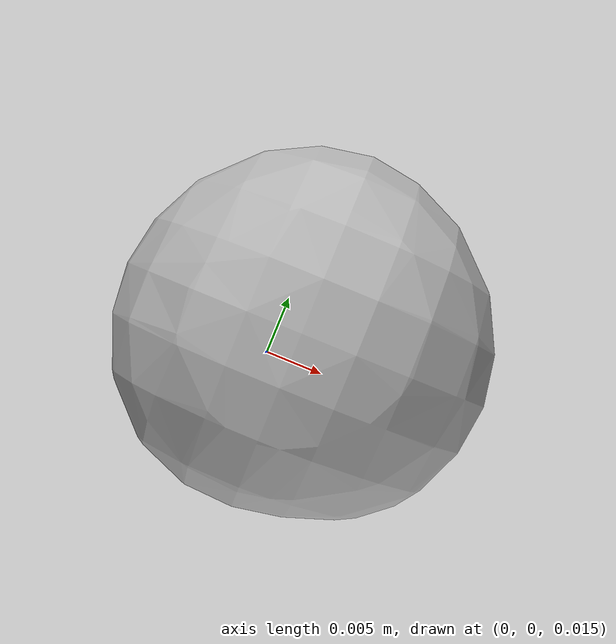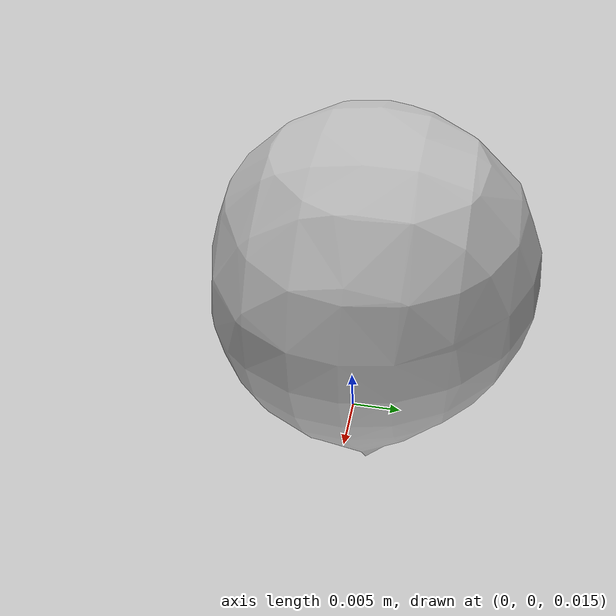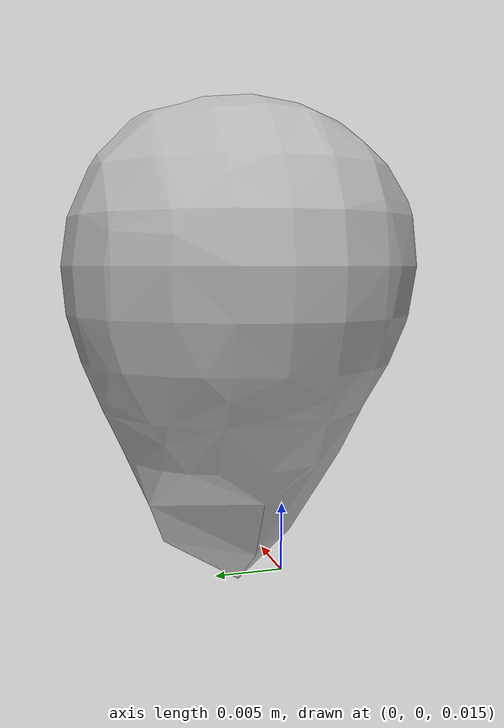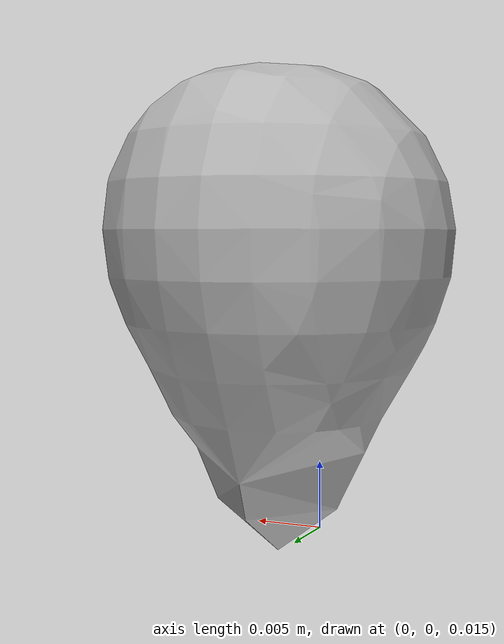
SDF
<?xml version='1.0'?>
<sdf version="1.4">
  <model name="072-f_toy_airplane">
    <static>false</static>
    <link name="link">
      <inertial>
        <pose>0.0023859734482038035 0.002729162435836264 0.03459613425242355 -3.1274735948325545 -0.027452215022373584 1.441382929250858</pose>
        <mass>0.0009732522539859455</mass>
        <inertia>
          <ixx>7.989948842398418e-08</ixx>
          <ixy>-1.2305290453823898e-24</ixy>
          <ixz>1.0805105175539502e-23</ixz>
          <iyy>7.89480909100528e-08</iyy>
          <iyz>8.721786864835362e-25</iyz>
          <izz>5.766214688224952e-08</izz>
        </inertia>
      </inertial>
      <collision name="collision">
        <geometry>
          <mesh>
            <!-- Use a downsampled mesh for collisions -->
            <uri>model:///072-f_toy_airplane/072-f_toy_airplane_250_collision.stl</uri>
	        </mesh>
        </geometry>
        <surface>
      </surface>
      </collision>
      <visual name="visual">
        <geometry>
          <mesh>
            <uri>model:///072-f_toy_airplane/textured.obj</uri>
	        </mesh>
        </geometry>
        <material>
          <script>
            <uri>model:///072-f_toy_airplane/072-f_toy_airplane.material</uri>
            <name>072-f_toy_airplane</name>
          </script>
        </material>
      </visual>
    </link>
  </model>
</sdf>
